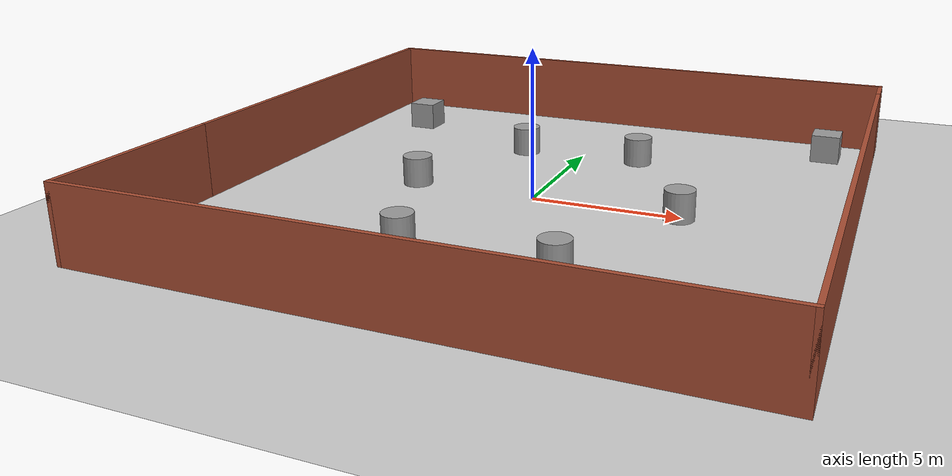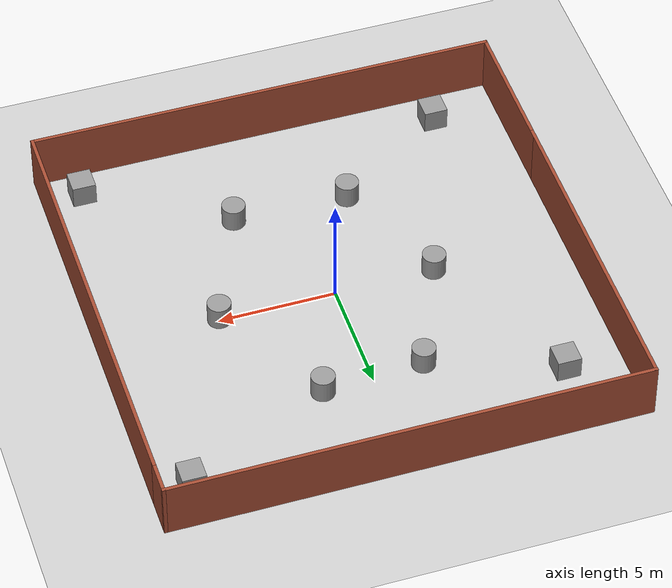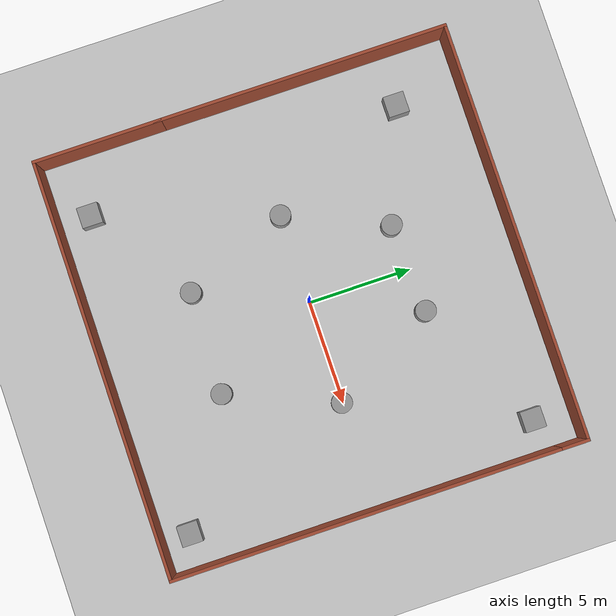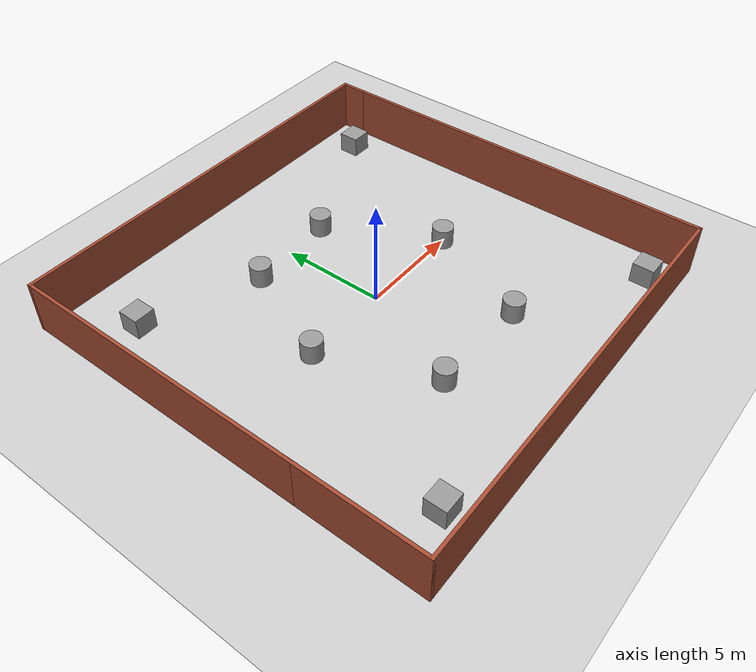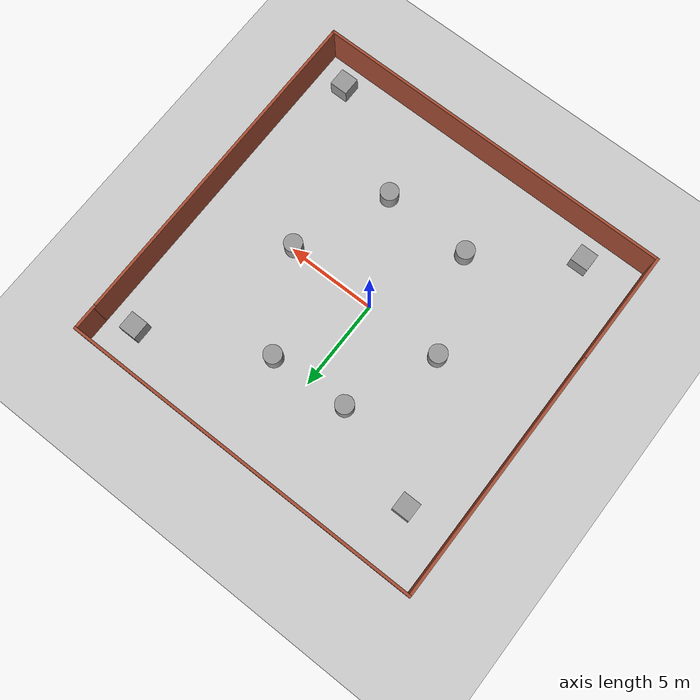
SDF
<sdf version="1.7">
 <world name="default">
  <light name="sun" type="directional">
   <pose>0 0 10 0 -0 0</pose>
   <diffuse>0.8 0.8 0.8 1</diffuse>
   <specular>0.2 0.2 0.2 1</specular>
   <attenuation>
    <range>1000</range>
    <constant>0.9</constant>
    <linear>0.01</linear>
    <quadratic>0.001</quadratic>
   </attenuation>
   <direction>-0.5 0.1 -0.9</direction>
   <spot><inner_angle>0</inner_angle><outer_angle>0</outer_angle><falloff>0</falloff></spot>
  </light>
  <model name="ground_plane">
   <static>1</static>
   <link name="link">
    <collision name="collision">
     <geometry><plane><normal>0 0 1</normal><size>100 100</size></plane></geometry>
     <surface><friction><ode><mu>100</mu><mu2>50</mu2></ode></friction></surface>
    </collision>
    <visual name="visual">
     <cast_shadows>0</cast_shadows>
     <geometry><plane><normal>0 0 1</normal><size>100 100</size></plane></geometry>
     <material>
      <script><uri>file://media/materials/scripts/gazebo.material</uri><name>Gazebo/Grey</name></script>
     </material>
    </visual>
   </link>
  </model>
  <gravity>0 0 -9.8</gravity>
  <magnetic_field>6e-06 2.3e-05 -4.2e-05</magnetic_field>
  <atmosphere type="adiabatic"/>
  <physics type="ode">
   <max_step_size>0.001</max_step_size>
   <real_time_factor>1</real_time_factor>
   <real_time_update_rate>1000</real_time_update_rate>
  </physics>
  <scene><ambient>0.4 0.4 0.4 1</ambient><background>0.7 0.7 0.7 1</background><shadows>1</shadows></scene>
  <spherical_coordinates>
   <surface_model>EARTH_WGS84</surface_model>
   <latitude_deg>0</latitude_deg>
   <longitude_deg>0</longitude_deg>
   <elevation>0</elevation>
   <heading_deg>0</heading_deg>
  </spherical_coordinates>
  <model name="unit_cylinder">
   <pose>-4.26623 -0.00719 0.499992 -3e-06 3e-06 0</pose>
   <link name="link">
    <inertial>
     <mass>1</mass>
     <inertia><ixx>0.145833</ixx><ixy>0</ixy><ixz>0</ixz><iyy>0.145833</iyy><iyz>0</iyz><izz>0.125</izz></inertia>
    </inertial>
    <collision name="collision">
     <geometry><cylinder><radius>0.5</radius><length>1</length></cylinder></geometry>
    </collision>
    <visual name="visual">
     <geometry><cylinder><radius>0.5</radius><length>1</length></cylinder></geometry>
     <material>
      <script><name>Gazebo/Grey</name><uri>file://media/materials/scripts/gazebo.material</uri></script>
     </material>
    </visual>
   </link>
  </model>
  <model name="unit_cylinder_0">
   <pose>4.93543 -0.077143 0.499998 3e-06 -3e-06 0</pose>
   <link name="link">
    <inertial>
     <mass>1</mass>
     <inertia><ixx>0.145833</ixx><ixy>0</ixy><ixz>0</ixz><iyy>0.145833</iyy><iyz>0</iyz><izz>0.125</izz></inertia>
    </inertial>
    <collision name="collision">
     <geometry><cylinder><radius>0.5</radius><length>1</length></cylinder></geometry>
    </collision>
    <visual name="visual">
     <geometry><cylinder><radius>0.5</radius><length>1</length></cylinder></geometry>
     <material>
      <script><name>Gazebo/Grey</name><uri>file://media/materials/scripts/gazebo.material</uri></script>
     </material>
    </visual>
   </link>
  </model>
  <model name="unit_cylinder_1">
   <pose>-2.18341 4.78456 0.499992 -3e-06 3e-06 0</pose>
   <link name="link">
    <inertial>
     <mass>1</mass>
     <inertia><ixx>0.145833</ixx><ixy>0</ixy><ixz>0</ixz><iyy>0.145833</iyy><iyz>0</iyz><izz>0.125</izz></inertia>
    </inertial>
    <collision name="collision">
     <geometry><cylinder><radius>0.5</radius><length>1</length></cylinder></geometry>
    </collision>
    <visual name="visual">
     <geometry><cylinder><radius>0.5</radius><length>1</length></cylinder></geometry>
     <material>
      <script><name>Gazebo/Grey</name><uri>file://media/materials/scripts/gazebo.material</uri></script>
     </material>
    </visual>
   </link>
  </model>
  <model name="unit_cylinder_2">
   <pose>2.13078 4.99555 0.499998 3e-06 -4e-06 0</pose>
   <link name="link">
    <inertial>
     <mass>1</mass>
     <inertia><ixx>0.145833</ixx><ixy>0</ixy><ixz>0</ixz><iyy>0.145833</iyy><iyz>0</iyz><izz>0.125</izz></inertia>
    </inertial>
    <collision name="collision">
     <geometry><cylinder><radius>0.5</radius><length>1</length></cylinder></geometry>
    </collision>
    <visual name="visual">
     <geometry><cylinder><radius>0.5</radius><length>1</length></cylinder></geometry>
     <material>
      <script><name>Gazebo/Grey</name><uri>file://media/materials/scripts/gazebo.material</uri></script>
     </material>
    </visual>
   </link>
  </model>
  <model name="unit_cylinder_3">
   <pose>-2.1617 -5.1134 0.499992 -3e-06 4e-06 0</pose>
   <link name="link">
    <inertial>
     <mass>1</mass>
     <inertia><ixx>0.145833</ixx><ixy>0</ixy><ixz>0</ixz><iyy>0.145833</iyy><iyz>0</iyz><izz>0.125</izz></inertia>
    </inertial>
    <collision name="collision">
     <geometry><cylinder><radius>0.5</radius><length>1</length></cylinder></geometry>
    </collision>
    <visual name="visual">
     <geometry><cylinder><radius>0.5</radius><length>1</length></cylinder></geometry>
     <material>
      <script><name>Gazebo/Grey</name><uri>file://media/materials/scripts/gazebo.material</uri></script>
     </material>
    </visual>
   </link>
  </model>
  <model name="unit_cylinder_4">
   <pose>2.77203 -5.25125 0.499998 3e-06 -4e-06 0</pose>
   <link name="link">
    <inertial>
     <mass>1</mass>
     <inertia><ixx>0.145833</ixx><ixy>0</ixy><ixz>0</ixz><iyy>0.145833</iyy><iyz>0</iyz><izz>0.125</izz></inertia>
    </inertial>
    <collision name="collision">
     <geometry><cylinder><radius>0.5</radius><length>1</length></cylinder></geometry>
    </collision>
    <visual name="visual">
     <geometry><cylinder><radius>0.5</radius><length>1</length></cylinder></geometry>
     <material>
      <script><name>Gazebo/Grey</name><uri>file://media/materials/scripts/gazebo.material</uri></script>
     </material>
    </visual>
   </link>
  </model>
  <model name="unit_box">
   <pose>-7.49439 6.80488 0.499995 0 1e-05 0</pose>
   <link name="link">
    <inertial>
     <mass>1</mass>
     <inertia>
      <ixx>0.166667</ixx>
      <ixy>0</ixy>
      <ixz>0</ixz>
      <iyy>0.166667</iyy>
      <iyz>0</iyz>
      <izz>0.166667</izz>
     </inertia>
    </inertial>
    <collision name="collision"><geometry><box><size>1 1 1</size></box></geometry></collision>
    <visual name="visual">
     <geometry><box><size>1 1 1</size></box></geometry>
     <material>
      <script><name>Gazebo/Grey</name><uri>file://media/materials/scripts/gazebo.material</uri></script>
     </material>
    </visual>
   </link>
  </model>
  <model name="unit_box_0">
   <pose>-7.10342 -8.45166 0.499995 -1e-05 -0 -0</pose>
   <link name="link">
    <inertial>
     <mass>1</mass>
     <inertia>
      <ixx>0.166667</ixx>
      <ixy>0</ixy>
      <ixz>0</ixz>
      <iyy>0.166667</iyy>
      <iyz>0</iyz>
      <izz>0.166667</izz>
     </inertia>
    </inertial>
    <collision name="collision"><geometry><box><size>1 1 1</size></box></geometry></collision>
    <visual name="visual">
     <geometry><box><size>1 1 1</size></box></geometry>
     <material>
      <script><name>Gazebo/Grey</name><uri>file://media/materials/scripts/gazebo.material</uri></script>
     </material>
    </visual>
   </link>
  </model>
  <model name="unit_box_1">
   <pose>8.41521 -8.66642 0.499995 0 1e-05 0</pose>
   <link name="link">
    <inertial>
     <mass>1</mass>
     <inertia>
      <ixx>0.166667</ixx>
      <ixy>0</ixy>
      <ixz>0</ixz>
      <iyy>0.166667</iyy>
      <iyz>0</iyz>
      <izz>0.166667</izz>
     </inertia>
    </inertial>
    <collision name="collision"><geometry><box><size>1 1 1</size></box></geometry></collision>
    <visual name="visual">
     <geometry><box><size>1 1 1</size></box></geometry>
     <material>
      <script><name>Gazebo/Grey</name><uri>file://media/materials/scripts/gazebo.material</uri></script>
     </material>
    </visual>
   </link>
  </model>
  <model name="unit_box_2">
   <pose>8.48911 8.07281 0.499995 -1e-05 -0 0</pose>
   <link name="link">
    <inertial>
     <mass>1</mass>
     <inertia>
      <ixx>0.166667</ixx>
      <ixy>0</ixy>
      <ixz>0</ixz>
      <iyy>0.166667</iyy>
      <iyz>0</iyz>
      <izz>0.166667</izz>
     </inertia>
    </inertial>
    <collision name="collision"><geometry><box><size>1 1 1</size></box></geometry></collision>
    <visual name="visual">
     <geometry><box><size>1 1 1</size></box></geometry>
     <material>
      <script><name>Gazebo/Grey</name><uri>file://media/materials/scripts/gazebo.material</uri></script>
     </material>
    </visual>
   </link>
  </model>
  <model name="wall">
   <pose>0.034627 -0.018764 0 0 -0 0</pose>
   <link name="Wall_1">
    <collision name="Wall_1_Collision">
     <geometry><box><size>6.25 0.15 2.5</size></box></geometry>
     <pose>0 0 1.25 0 -0 0</pose>
    </collision>
    <visual name="Wall_1_Visual">
     <pose>0 0 1.25 0 -0 0</pose>
     <geometry><box><size>6.25 0.15 2.5</size></box></geometry>
     <material>
      <script><uri>file://media/materials/scripts/gazebo.material</uri><name>Gazebo/Bricks</name></script>
      <ambient>1 1 1 1</ambient>
     </material>
     <meta><layer>0</layer></meta>
    </visual>
    <pose>-10.05 -6.925 0 0 -0 -1.5708</pose>
   </link>
   <link name="Wall_2">
    <collision name="Wall_2_Collision">
     <geometry><box><size>20.25 0.15 2.5</size></box></geometry>
     <pose>0 0 1.25 0 -0 0</pose>
    </collision>
    <visual name="Wall_2_Visual">
     <pose>0 0 1.25 0 -0 0</pose>
     <geometry><box><size>20.25 0.15 2.5</size></box></geometry>
     <material>
      <script><uri>file://media/materials/scripts/gazebo.material</uri><name>Gazebo/Bricks</name></script>
      <ambient>1 1 1 1</ambient>
     </material>
     <meta><layer>0</layer></meta>
    </visual>
    <pose>-0 -9.975 0 0 -0 0</pose>
   </link>
   <link name="Wall_3">
    <collision name="Wall_3_Collision">
     <geometry><box><size>18.75 0.15 2.5</size></box></geometry>
     <pose>0 0 1.25 0 -0 0</pose>
    </collision>
    <visual name="Wall_3_Visual">
     <pose>0 0 1.25 0 -0 0</pose>
     <geometry><box><size>18.75 0.15 2.5</size></box></geometry>
     <material>
      <script><uri>file://media/materials/scripts/gazebo.material</uri><name>Gazebo/Bricks</name></script>
      <ambient>1 1 1 1</ambient>
     </material>
     <meta><layer>0</layer></meta>
    </visual>
    <pose>10.05 -0.675 0 0 -0 1.5708</pose>
   </link>
   <link name="Wall_4">
    <collision name="Wall_4_Collision">
     <geometry><box><size>1.5 0.15 2.5</size></box></geometry>
     <pose>0 0 1.25 0 -0 0</pose>
    </collision>
    <visual name="Wall_4_Visual">
     <pose>0 0 1.25 0 -0 0</pose>
     <geometry><box><size>1.5 0.15 2.5</size></box></geometry>
     <material>
      <script><uri>file://media/materials/scripts/gazebo.material</uri><name>Gazebo/Bricks</name></script>
      <ambient>1 1 1 1</ambient>
     </material>
     <meta><layer>0</layer></meta>
    </visual>
    <pose>10.05 9.3 0 0 -0 1.5708</pose>
   </link>
   <link name="Wall_5">
    <collision name="Wall_5_Collision">
     <geometry><box><size>20.25 0.15 2.5</size></box></geometry>
     <pose>0 0 1.25 0 -0 0</pose>
    </collision>
    <visual name="Wall_5_Visual">
     <pose>0 0 1.25 0 -0 0</pose>
     <geometry><box><size>20.25 0.15 2.5</size></box></geometry>
     <material>
      <script><uri>file://media/materials/scripts/gazebo.material</uri><name>Gazebo/Bricks</name></script>
      <ambient>1 1 1 1</ambient>
     </material>
     <meta><layer>0</layer></meta>
    </visual>
    <pose>-0 9.975 0 0 -0 3.14159</pose>
   </link>
   <link name="Wall_6">
    <collision name="Wall_6_Collision">
     <geometry><box><size>14.25 0.15 2.5</size></box></geometry>
     <pose>0 0 1.25 0 -0 0</pose>
    </collision>
    <visual name="Wall_6_Visual">
     <pose>0 0 1.25 0 -0 0</pose>
     <geometry><box><size>14.25 0.15 2.5</size></box></geometry>
     <material>
      <script><uri>file://media/materials/scripts/gazebo.material</uri><name>Gazebo/Bricks</name></script>
      <ambient>1 1 1 1</ambient>
     </material>
     <meta><layer>0</layer></meta>
    </visual>
    <pose>-10.05 2.925 0 0 -0 -1.5708</pose>
   </link>
   <static>1</static>
  </model>
 </world>
</sdf>
